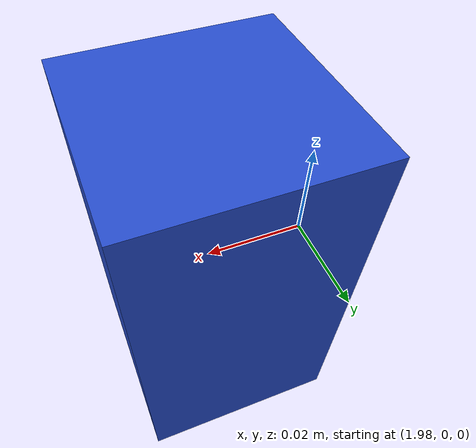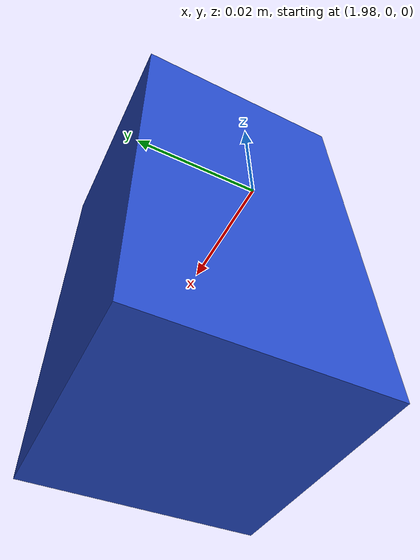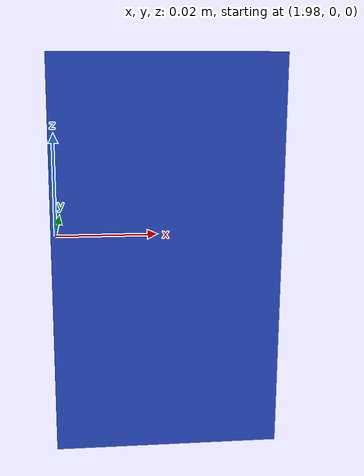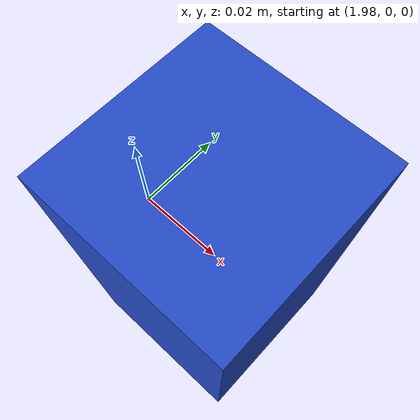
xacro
<?xml version='1.0'?>

<robot name="simple_box" xmlns:xacro="http://www.ros.org/wiki/xacro">
  <xacro:include filename="$(find lynxbot_description)/urdf/macros/inertia_macros.urdf.xacro" />
  <link name="my_box">
      <xacro:box_inertial x="0.04" y="0.04" z="0.07" m="0.1">
        <origin xyz="2.0 0.0 0.0" rpy="0 0 0"/>
      </xacro:box_inertial>
    <visual>
      <origin xyz="2 0 0"/>
      <geometry>
        <box size="0.04 0.04 0.07" />
      </geometry>
    </visual>
    <collision>
      <origin xyz="2 0 0"/>
      <geometry>
        <box size="0.04 0.04 0.07" />
      </geometry>
    </collision>
  </link>
  <gazebo reference="my_box">
    <material>Gazebo/Blue</material>
  </gazebo>
</robot>

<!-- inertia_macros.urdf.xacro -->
<robot name="my_robot_arm" xmlns:xacro="http://www.ros.org/wiki/xacro">

  <xacro:macro name="cylinder_inertial" params="radius length mass *origin">
    <inertial>
      <mass value="${mass}" />
      <xacro:insert_block name="origin" />
      <inertia ixx="${0.0833333 * mass * (3 * radius * radius + length * length)}" ixy="0.0" ixz="0.0"
        iyy="${0.0833333 * mass * (3 * radius * radius + length * length)}" iyz="0.0"
        izz="${0.5 * mass * radius * radius}" />
    </inertial>
  </xacro:macro>

  <xacro:macro name="box_inertial" params="x y z m *origin">
    <inertial>
      <mass value="${m}" />
      <xacro:insert_block name="origin" />
      <inertia  ixx="${m*(y*y+z*z)/12}" ixy = "0" ixz = "0"
                  iyy="${m*(x*x+z*z)/12}" iyz = "0"
                  izz="${m*(x*x+z*z)/12}" />
    </inertial>
  </xacro:macro>

</robot>
